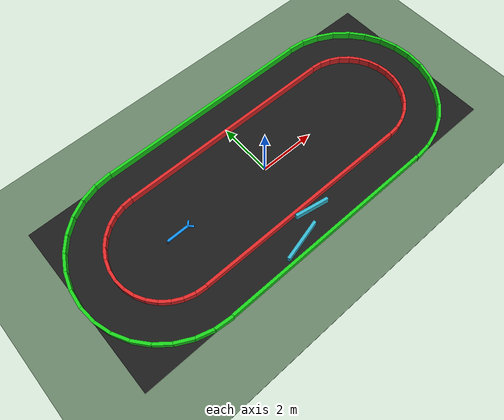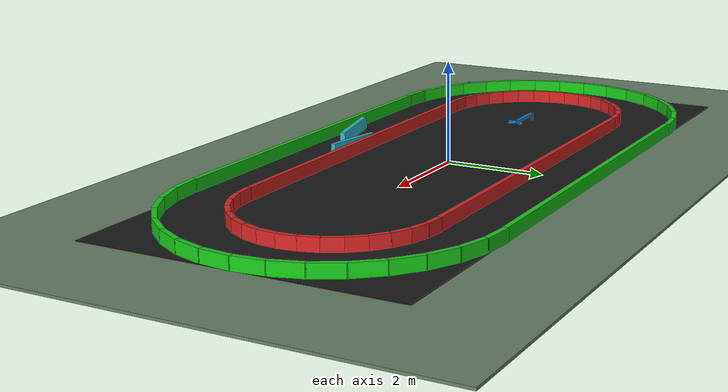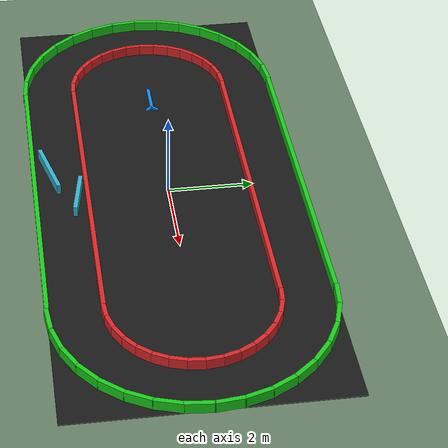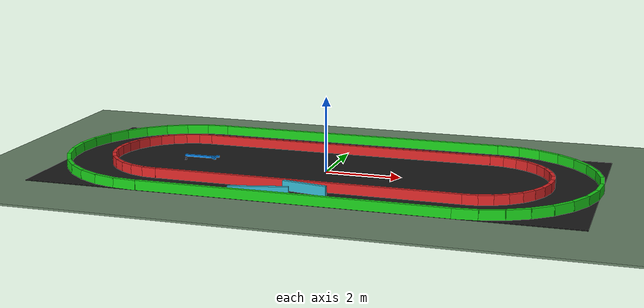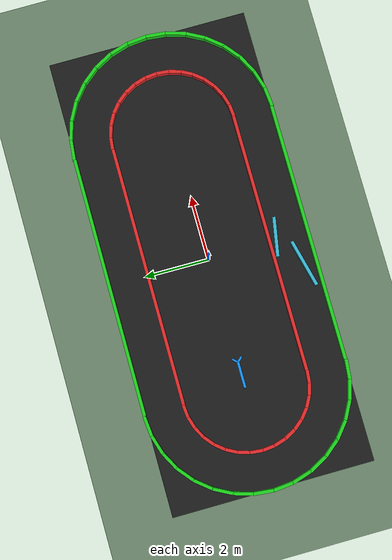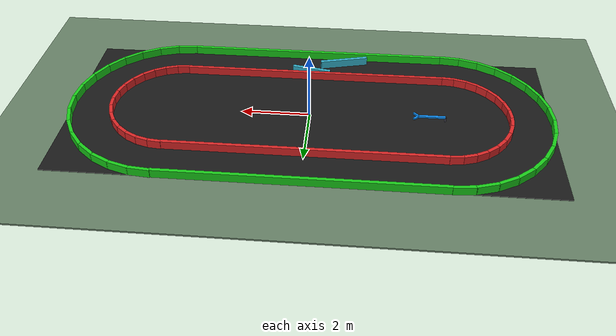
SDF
<?xml version="1.0" ?>
<sdf version="1.6">
  <world name="default">
    <plugin filename="gz-sim-physics-system"
            name="gz::sim::systems::Physics"/>

    <plugin filename="gz-sim-user-commands-system"
            name="gz::sim::systems::UserCommands"/>

    <plugin filename="gz-sim-scene-broadcaster-system"
            name="gz::sim::systems::SceneBroadcaster"/>

    <light type="directional" name="sun">
      <pose>0 0 10 0 0 0</pose>
      <diffuse>0.8 0.8 0.8 1</diffuse>
      <specular>0.2 0.2 0.2 1</specular>
      <attenuation>
        <range>200</range>
        <constant>0.9</constant>
        <linear>0.01</linear>
        <quadratic>0.001</quadratic>
      </attenuation>
      <direction>-0.5 0.5 -1</direction>
      <cast_shadows>true</cast_shadows>
    </light>

    <model name="ground_plane_local">
      <static>true</static>
      <pose>0 0 -0.025 0 0 0</pose>
      <link name="ground_link">
        <collision name="ground_collision">
          <geometry>
            <box>
              <size>60 60 0.05</size>
            </box>
          </geometry>
          <surface>
            <friction>
              <ode>
                <mu>1.2</mu>
                <mu2>1.2</mu2>
                <slip1>0.0</slip1>
                <slip2>0.0</slip2>
              </ode>
            </friction>
            <contact>
              <ode>
                <kp>100000.0</kp>
                <kd>10.0</kd>
              </ode>
            </contact>
          </surface>
        </collision>
        <visual name="ground_visual">
          <geometry>
            <box>
              <size>60 60 0.05</size>
            </box>
          </geometry>
          <material>
            <ambient>0.35 0.45 0.35 1</ambient>
            <diffuse>0.4 0.5 0.4 1</diffuse>
          </material>
        </visual>
      </link>
    </model>

    <physics name="default_physics" type="ode">
      <real_time_factor>1.0</real_time_factor>
      <real_time_update_rate>1000.0</real_time_update_rate>
    </physics>

    <!-- Enable Gazebo Sim IMU and sensors -->
    <plugin filename="gz-sim-imu-system" name="gz::sim::systems::Imu"/>
    <plugin filename="gz-sim-sensors-system" name="gz::sim::systems::Sensors"/>
    <!-- Enable spawn/create service used by ros_gz_sim create -->
    <plugin filename="gz-sim-user-commands-system" name="gz::sim::systems::UserCommands"/>

    <!-- Oval track with protective walls -->
    <model name="oval_track">
      <static>true</static>
      <pose>0 0 0 0 0 0</pose>
      <link name="track_surface">
        <collision name="track_collision">
          <geometry>
            <box>
              <size>14.200 6.200 0.02</size>
            </box>
          </geometry>
          <pose>0 0 0.010 0 0 0</pose>
          <surface>
            <friction>
              <ode>
                <mu>1.2</mu>
                <mu2>1.2</mu2>
                <slip1>0.0</slip1>
                <slip2>0.0</slip2>
              </ode>
            </friction>
            <contact>
              <ode>
                <kp>100000.0</kp>
                <kd>10.0</kd>
              </ode>
            </contact>
          </surface>
        </collision>
        <visual name="track_visual">
          <geometry>
            <box>
              <size>14.200 6.200 0.02</size>
            </box>
          </geometry>
          <pose>0 0 0.010 0 0 0</pose>
          <material>
            <ambient>0.08 0.08 0.08 1</ambient>
            <diffuse>0.1 0.1 0.1 1</diffuse>
            <specular>0.05 0.05 0.05 1</specular>
          </material>
        </visual>
      </link>
      <link name="track_walls">
      <collision name="outer_pos_collision">
        <geometry>
          <box>
            <size>8.000 0.100 0.250</size>
          </box>
        </geometry>
        <pose>0.000 3.100 0.145 0.000 0.000 0.000</pose>
      </collision>
      <visual name="outer_pos_visual">
        <geometry>
          <box>
            <size>8.000 0.100 0.250</size>
          </box>
        </geometry>
        <pose>0.000 3.100 0.145 0.000 0.000 0.000</pose>
        <material>
          <ambient>0.1 0.8 0.1 1</ambient>
          <diffuse>0.1 0.8 0.1 1</diffuse>
        </material>
      </visual>
      <collision name="outer_neg_collision">
        <geometry>
          <box>
            <size>8.000 0.100 0.250</size>
          </box>
        </geometry>
        <pose>0.000 -3.100 0.145 0.000 0.000 0.000</pose>
      </collision>
      <visual name="outer_neg_visual">
        <geometry>
          <box>
            <size>8.000 0.100 0.250</size>
          </box>
        </geometry>
        <pose>0.000 -3.100 0.145 0.000 0.000 0.000</pose>
        <material>
          <ambient>0.1 0.8 0.1 1</ambient>
          <diffuse>0.1 0.8 0.1 1</diffuse>
        </material>
      </visual>
      <collision name="inner_pos_collision">
        <geometry>
          <box>
            <size>8.000 0.100 0.250</size>
          </box>
        </geometry>
        <pose>0.000 1.900 0.145 0.000 0.000 0.000</pose>
      </collision>
      <visual name="inner_pos_visual">
        <geometry>
          <box>
            <size>8.000 0.100 0.250</size>
          </box>
        </geometry>
        <pose>0.000 1.900 0.145 0.000 0.000 0.000</pose>
        <material>
          <ambient>0.85 0.15 0.15 1</ambient>
          <diffuse>0.85 0.15 0.15 1</diffuse>
        </material>
      </visual>
      <collision name="inner_neg_collision">
        <geometry>
          <box>
            <size>8.000 0.100 0.250</size>
          </box>
        </geometry>
        <pose>0.000 -1.900 0.145 0.000 0.000 0.000</pose>
      </collision>
      <visual name="inner_neg_visual">
        <geometry>
          <box>
            <size>8.000 0.100 0.250</size>
          </box>
        </geometry>
        <pose>0.000 -1.900 0.145 0.000 0.000 0.000</pose>
        <material>
          <ambient>0.85 0.15 0.15 1</ambient>
          <diffuse>0.85 0.15 0.15 1</diffuse>
        </material>
      </visual>
      <collision name="outer_r_right_0_collision">
        <geometry>
          <box>
            <size>0.639 0.100 0.250</size>
          </box>
        </geometry>
        <pose>4.304 -3.085 0.145 0.000 0.000 0.098</pose>
      </collision>
      <visual name="outer_r_right_0_visual">
        <geometry>
          <box>
            <size>0.639 0.100 0.250</size>
          </box>
        </geometry>
        <pose>4.304 -3.085 0.145 0.000 0.000 0.098</pose>
        <material>
          <ambient>0.1 0.8 0.1 1</ambient>
          <diffuse>0.1 0.8 0.1 1</diffuse>
        </material>
      </visual>
      <collision name="inner_r_right_0_collision">
        <geometry>
          <box>
            <size>0.392 0.100 0.250</size>
          </box>
        </geometry>
        <pose>4.186 -1.891 0.145 0.000 0.000 0.098</pose>
      </collision>
      <visual name="inner_r_right_0_visual">
        <geometry>
          <box>
            <size>0.392 0.100 0.250</size>
          </box>
        </geometry>
        <pose>4.186 -1.891 0.145 0.000 0.000 0.098</pose>
        <material>
          <ambient>0.85 0.15 0.15 1</ambient>
          <diffuse>0.85 0.15 0.15 1</diffuse>
        </material>
      </visual>
      <collision name="outer_r_right_1_collision">
        <geometry>
          <box>
            <size>0.639 0.100 0.250</size>
          </box>
        </geometry>
        <pose>4.900 -2.967 0.145 0.000 0.000 0.295</pose>
      </collision>
      <visual name="outer_r_right_1_visual">
        <geometry>
          <box>
            <size>0.639 0.100 0.250</size>
          </box>
        </geometry>
        <pose>4.900 -2.967 0.145 0.000 0.000 0.295</pose>
        <material>
          <ambient>0.1 0.8 0.1 1</ambient>
          <diffuse>0.1 0.8 0.1 1</diffuse>
        </material>
      </visual>
      <collision name="inner_r_right_1_collision">
        <geometry>
          <box>
            <size>0.392 0.100 0.250</size>
          </box>
        </geometry>
        <pose>4.552 -1.818 0.145 0.000 0.000 0.295</pose>
      </collision>
      <visual name="inner_r_right_1_visual">
        <geometry>
          <box>
            <size>0.392 0.100 0.250</size>
          </box>
        </geometry>
        <pose>4.552 -1.818 0.145 0.000 0.000 0.295</pose>
        <material>
          <ambient>0.85 0.15 0.15 1</ambient>
          <diffuse>0.85 0.15 0.15 1</diffuse>
        </material>
      </visual>
      <collision name="outer_r_right_2_collision">
        <geometry>
          <box>
            <size>0.639 0.100 0.250</size>
          </box>
        </geometry>
        <pose>5.461 -2.734 0.145 0.000 0.000 0.491</pose>
      </collision>
      <visual name="outer_r_right_2_visual">
        <geometry>
          <box>
            <size>0.639 0.100 0.250</size>
          </box>
        </geometry>
        <pose>5.461 -2.734 0.145 0.000 0.000 0.491</pose>
        <material>
          <ambient>0.1 0.8 0.1 1</ambient>
          <diffuse>0.1 0.8 0.1 1</diffuse>
        </material>
      </visual>
      <collision name="inner_r_right_2_collision">
        <geometry>
          <box>
            <size>0.392 0.100 0.250</size>
          </box>
        </geometry>
        <pose>4.896 -1.676 0.145 0.000 0.000 0.491</pose>
      </collision>
      <visual name="inner_r_right_2_visual">
        <geometry>
          <box>
            <size>0.392 0.100 0.250</size>
          </box>
        </geometry>
        <pose>4.896 -1.676 0.145 0.000 0.000 0.491</pose>
        <material>
          <ambient>0.85 0.15 0.15 1</ambient>
          <diffuse>0.85 0.15 0.15 1</diffuse>
        </material>
      </visual>
      <collision name="outer_r_right_3_collision">
        <geometry>
          <box>
            <size>0.639 0.100 0.250</size>
          </box>
        </geometry>
        <pose>5.967 -2.396 0.145 0.000 0.000 0.687</pose>
      </collision>
      <visual name="outer_r_right_3_visual">
        <geometry>
          <box>
            <size>0.639 0.100 0.250</size>
          </box>
        </geometry>
        <pose>5.967 -2.396 0.145 0.000 0.000 0.687</pose>
        <material>
          <ambient>0.1 0.8 0.1 1</ambient>
          <diffuse>0.1 0.8 0.1 1</diffuse>
        </material>
      </visual>
      <collision name="inner_r_right_3_collision">
        <geometry>
          <box>
            <size>0.392 0.100 0.250</size>
          </box>
        </geometry>
        <pose>5.205 -1.469 0.145 0.000 0.000 0.687</pose>
      </collision>
      <visual name="inner_r_right_3_visual">
        <geometry>
          <box>
            <size>0.392 0.100 0.250</size>
          </box>
        </geometry>
        <pose>5.205 -1.469 0.145 0.000 0.000 0.687</pose>
        <material>
          <ambient>0.85 0.15 0.15 1</ambient>
          <diffuse>0.85 0.15 0.15 1</diffuse>
        </material>
      </visual>
      <collision name="outer_r_right_4_collision">
        <geometry>
          <box>
            <size>0.639 0.100 0.250</size>
          </box>
        </geometry>
        <pose>6.396 -1.967 0.145 0.000 0.000 0.884</pose>
      </collision>
      <visual name="outer_r_right_4_visual">
        <geometry>
          <box>
            <size>0.639 0.100 0.250</size>
          </box>
        </geometry>
        <pose>6.396 -1.967 0.145 0.000 0.000 0.884</pose>
        <material>
          <ambient>0.1 0.8 0.1 1</ambient>
          <diffuse>0.1 0.8 0.1 1</diffuse>
        </material>
      </visual>
      <collision name="inner_r_right_4_collision">
        <geometry>
          <box>
            <size>0.392 0.100 0.250</size>
          </box>
        </geometry>
        <pose>5.469 -1.205 0.145 0.000 0.000 0.884</pose>
      </collision>
      <visual name="inner_r_right_4_visual">
        <geometry>
          <box>
            <size>0.392 0.100 0.250</size>
          </box>
        </geometry>
        <pose>5.469 -1.205 0.145 0.000 0.000 0.884</pose>
        <material>
          <ambient>0.85 0.15 0.15 1</ambient>
          <diffuse>0.85 0.15 0.15 1</diffuse>
        </material>
      </visual>
      <collision name="outer_r_right_5_collision">
        <geometry>
          <box>
            <size>0.639 0.100 0.250</size>
          </box>
        </geometry>
        <pose>6.734 -1.461 0.145 0.000 0.000 1.080</pose>
      </collision>
      <visual name="outer_r_right_5_visual">
        <geometry>
          <box>
            <size>0.639 0.100 0.250</size>
          </box>
        </geometry>
        <pose>6.734 -1.461 0.145 0.000 0.000 1.080</pose>
        <material>
          <ambient>0.1 0.8 0.1 1</ambient>
          <diffuse>0.1 0.8 0.1 1</diffuse>
        </material>
      </visual>
      <collision name="inner_r_right_5_collision">
        <geometry>
          <box>
            <size>0.392 0.100 0.250</size>
          </box>
        </geometry>
        <pose>5.676 -0.896 0.145 0.000 0.000 1.080</pose>
      </collision>
      <visual name="inner_r_right_5_visual">
        <geometry>
          <box>
            <size>0.392 0.100 0.250</size>
          </box>
        </geometry>
        <pose>5.676 -0.896 0.145 0.000 0.000 1.080</pose>
        <material>
          <ambient>0.85 0.15 0.15 1</ambient>
          <diffuse>0.85 0.15 0.15 1</diffuse>
        </material>
      </visual>
      <collision name="outer_r_right_6_collision">
        <geometry>
          <box>
            <size>0.639 0.100 0.250</size>
          </box>
        </geometry>
        <pose>6.967 -0.900 0.145 0.000 0.000 1.276</pose>
      </collision>
      <visual name="outer_r_right_6_visual">
        <geometry>
          <box>
            <size>0.639 0.100 0.250</size>
          </box>
        </geometry>
        <pose>6.967 -0.900 0.145 0.000 0.000 1.276</pose>
        <material>
          <ambient>0.1 0.8 0.1 1</ambient>
          <diffuse>0.1 0.8 0.1 1</diffuse>
        </material>
      </visual>
      <collision name="inner_r_right_6_collision">
        <geometry>
          <box>
            <size>0.392 0.100 0.250</size>
          </box>
        </geometry>
        <pose>5.818 -0.552 0.145 0.000 0.000 1.276</pose>
      </collision>
      <visual name="inner_r_right_6_visual">
        <geometry>
          <box>
            <size>0.392 0.100 0.250</size>
          </box>
        </geometry>
        <pose>5.818 -0.552 0.145 0.000 0.000 1.276</pose>
        <material>
          <ambient>0.85 0.15 0.15 1</ambient>
          <diffuse>0.85 0.15 0.15 1</diffuse>
        </material>
      </visual>
      <collision name="outer_r_right_7_collision">
        <geometry>
          <box>
            <size>0.639 0.100 0.250</size>
          </box>
        </geometry>
        <pose>7.085 -0.304 0.145 0.000 0.000 1.473</pose>
      </collision>
      <visual name="outer_r_right_7_visual">
        <geometry>
          <box>
            <size>0.639 0.100 0.250</size>
          </box>
        </geometry>
        <pose>7.085 -0.304 0.145 0.000 0.000 1.473</pose>
        <material>
          <ambient>0.1 0.8 0.1 1</ambient>
          <diffuse>0.1 0.8 0.1 1</diffuse>
        </material>
      </visual>
      <collision name="inner_r_right_7_collision">
        <geometry>
          <box>
            <size>0.392 0.100 0.250</size>
          </box>
        </geometry>
        <pose>5.891 -0.186 0.145 0.000 0.000 1.473</pose>
      </collision>
      <visual name="inner_r_right_7_visual">
        <geometry>
          <box>
            <size>0.392 0.100 0.250</size>
          </box>
        </geometry>
        <pose>5.891 -0.186 0.145 0.000 0.000 1.473</pose>
        <material>
          <ambient>0.85 0.15 0.15 1</ambient>
          <diffuse>0.85 0.15 0.15 1</diffuse>
        </material>
      </visual>
      <collision name="outer_r_right_8_collision">
        <geometry>
          <box>
            <size>0.639 0.100 0.250</size>
          </box>
        </geometry>
        <pose>7.085 0.304 0.145 0.000 0.000 1.669</pose>
      </collision>
      <visual name="outer_r_right_8_visual">
        <geometry>
          <box>
            <size>0.639 0.100 0.250</size>
          </box>
        </geometry>
        <pose>7.085 0.304 0.145 0.000 0.000 1.669</pose>
        <material>
          <ambient>0.1 0.8 0.1 1</ambient>
          <diffuse>0.1 0.8 0.1 1</diffuse>
        </material>
      </visual>
      <collision name="inner_r_right_8_collision">
        <geometry>
          <box>
            <size>0.392 0.100 0.250</size>
          </box>
        </geometry>
        <pose>5.891 0.186 0.145 0.000 0.000 1.669</pose>
      </collision>
      <visual name="inner_r_right_8_visual">
        <geometry>
          <box>
            <size>0.392 0.100 0.250</size>
          </box>
        </geometry>
        <pose>5.891 0.186 0.145 0.000 0.000 1.669</pose>
        <material>
          <ambient>0.85 0.15 0.15 1</ambient>
          <diffuse>0.85 0.15 0.15 1</diffuse>
        </material>
      </visual>
      <collision name="outer_r_right_9_collision">
        <geometry>
          <box>
            <size>0.639 0.100 0.250</size>
          </box>
        </geometry>
        <pose>6.967 0.900 0.145 0.000 0.000 1.865</pose>
      </collision>
      <visual name="outer_r_right_9_visual">
        <geometry>
          <box>
            <size>0.639 0.100 0.250</size>
          </box>
        </geometry>
        <pose>6.967 0.900 0.145 0.000 0.000 1.865</pose>
        <material>
          <ambient>0.1 0.8 0.1 1</ambient>
          <diffuse>0.1 0.8 0.1 1</diffuse>
        </material>
      </visual>
      <collision name="inner_r_right_9_collision">
        <geometry>
          <box>
            <size>0.392 0.100 0.250</size>
          </box>
        </geometry>
        <pose>5.818 0.552 0.145 0.000 0.000 1.865</pose>
      </collision>
      <visual name="inner_r_right_9_visual">
        <geometry>
          <box>
            <size>0.392 0.100 0.250</size>
          </box>
        </geometry>
        <pose>5.818 0.552 0.145 0.000 0.000 1.865</pose>
        <material>
          <ambient>0.85 0.15 0.15 1</ambient>
          <diffuse>0.85 0.15 0.15 1</diffuse>
        </material>
      </visual>
      <collision name="outer_r_right_10_collision">
        <geometry>
          <box>
            <size>0.639 0.100 0.250</size>
          </box>
        </geometry>
        <pose>6.734 1.461 0.145 0.000 0.000 2.062</pose>
      </collision>
      <visual name="outer_r_right_10_visual">
        <geometry>
          <box>
            <size>0.639 0.100 0.250</size>
          </box>
        </geometry>
        <pose>6.734 1.461 0.145 0.000 0.000 2.062</pose>
        <material>
          <ambient>0.1 0.8 0.1 1</ambient>
          <diffuse>0.1 0.8 0.1 1</diffuse>
        </material>
      </visual>
      <collision name="inner_r_right_10_collision">
        <geometry>
          <box>
            <size>0.392 0.100 0.250</size>
          </box>
        </geometry>
        <pose>5.676 0.896 0.145 0.000 0.000 2.062</pose>
      </collision>
      <visual name="inner_r_right_10_visual">
        <geometry>
          <box>
            <size>0.392 0.100 0.250</size>
          </box>
        </geometry>
        <pose>5.676 0.896 0.145 0.000 0.000 2.062</pose>
        <material>
          <ambient>0.85 0.15 0.15 1</ambient>
          <diffuse>0.85 0.15 0.15 1</diffuse>
        </material>
      </visual>
      <collision name="outer_r_right_11_collision">
        <geometry>
          <box>
            <size>0.639 0.100 0.250</size>
          </box>
        </geometry>
        <pose>6.396 1.967 0.145 0.000 0.000 2.258</pose>
      </collision>
      <visual name="outer_r_right_11_visual">
        <geometry>
          <box>
            <size>0.639 0.100 0.250</size>
          </box>
        </geometry>
        <pose>6.396 1.967 0.145 0.000 0.000 2.258</pose>
        <material>
          <ambient>0.1 0.8 0.1 1</ambient>
          <diffuse>0.1 0.8 0.1 1</diffuse>
        </material>
      </visual>
      <collision name="inner_r_right_11_collision">
        <geometry>
          <box>
            <size>0.392 0.100 0.250</size>
          </box>
        </geometry>
        <pose>5.469 1.205 0.145 0.000 0.000 2.258</pose>
      </collision>
      <visual name="inner_r_right_11_visual">
        <geometry>
          <box>
            <size>0.392 0.100 0.250</size>
          </box>
        </geometry>
        <pose>5.469 1.205 0.145 0.000 0.000 2.258</pose>
        <material>
          <ambient>0.85 0.15 0.15 1</ambient>
          <diffuse>0.85 0.15 0.15 1</diffuse>
        </material>
      </visual>
      <collision name="outer_r_right_12_collision">
        <geometry>
          <box>
            <size>0.639 0.100 0.250</size>
          </box>
        </geometry>
        <pose>5.967 2.396 0.145 0.000 0.000 2.454</pose>
      </collision>
      <visual name="outer_r_right_12_visual">
        <geometry>
          <box>
            <size>0.639 0.100 0.250</size>
          </box>
        </geometry>
        <pose>5.967 2.396 0.145 0.000 0.000 2.454</pose>
        <material>
          <ambient>0.1 0.8 0.1 1</ambient>
          <diffuse>0.1 0.8 0.1 1</diffuse>
        </material>
      </visual>
      <collision name="inner_r_right_12_collision">
        <geometry>
          <box>
            <size>0.392 0.100 0.250</size>
          </box>
        </geometry>
        <pose>5.205 1.469 0.145 0.000 0.000 2.454</pose>
      </collision>
      <visual name="inner_r_right_12_visual">
        <geometry>
          <box>
            <size>0.392 0.100 0.250</size>
          </box>
        </geometry>
        <pose>5.205 1.469 0.145 0.000 0.000 2.454</pose>
        <material>
          <ambient>0.85 0.15 0.15 1</ambient>
          <diffuse>0.85 0.15 0.15 1</diffuse>
        </material>
      </visual>
      <collision name="outer_r_right_13_collision">
        <geometry>
          <box>
            <size>0.639 0.100 0.250</size>
          </box>
        </geometry>
        <pose>5.461 2.734 0.145 0.000 0.000 2.651</pose>
      </collision>
      <visual name="outer_r_right_13_visual">
        <geometry>
          <box>
            <size>0.639 0.100 0.250</size>
          </box>
        </geometry>
        <pose>5.461 2.734 0.145 0.000 0.000 2.651</pose>
        <material>
          <ambient>0.1 0.8 0.1 1</ambient>
          <diffuse>0.1 0.8 0.1 1</diffuse>
        </material>
      </visual>
      <collision name="inner_r_right_13_collision">
        <geometry>
          <box>
            <size>0.392 0.100 0.250</size>
          </box>
        </geometry>
        <pose>4.896 1.676 0.145 0.000 0.000 2.651</pose>
      </collision>
      <visual name="inner_r_right_13_visual">
        <geometry>
          <box>
            <size>0.392 0.100 0.250</size>
          </box>
        </geometry>
        <pose>4.896 1.676 0.145 0.000 0.000 2.651</pose>
        <material>
          <ambient>0.85 0.15 0.15 1</ambient>
          <diffuse>0.85 0.15 0.15 1</diffuse>
        </material>
      </visual>
      <collision name="outer_r_right_14_collision">
        <geometry>
          <box>
            <size>0.639 0.100 0.250</size>
          </box>
        </geometry>
        <pose>4.900 2.967 0.145 0.000 0.000 2.847</pose>
      </collision>
      <visual name="outer_r_right_14_visual">
        <geometry>
          <box>
            <size>0.639 0.100 0.250</size>
          </box>
        </geometry>
        <pose>4.900 2.967 0.145 0.000 0.000 2.847</pose>
        <material>
          <ambient>0.1 0.8 0.1 1</ambient>
          <diffuse>0.1 0.8 0.1 1</diffuse>
        </material>
      </visual>
      <collision name="inner_r_right_14_collision">
        <geometry>
          <box>
            <size>0.392 0.100 0.250</size>
          </box>
        </geometry>
        <pose>4.552 1.818 0.145 0.000 0.000 2.847</pose>
      </collision>
      <visual name="inner_r_right_14_visual">
        <geometry>
          <box>
            <size>0.392 0.100 0.250</size>
          </box>
        </geometry>
        <pose>4.552 1.818 0.145 0.000 0.000 2.847</pose>
        <material>
          <ambient>0.85 0.15 0.15 1</ambient>
          <diffuse>0.85 0.15 0.15 1</diffuse>
        </material>
      </visual>
      <collision name="outer_r_right_15_collision">
        <geometry>
          <box>
            <size>0.639 0.100 0.250</size>
          </box>
        </geometry>
        <pose>4.304 3.085 0.145 0.000 0.000 3.043</pose>
      </collision>
      <visual name="outer_r_right_15_visual">
        <geometry>
          <box>
            <size>0.639 0.100 0.250</size>
          </box>
        </geometry>
        <pose>4.304 3.085 0.145 0.000 0.000 3.043</pose>
        <material>
          <ambient>0.1 0.8 0.1 1</ambient>
          <diffuse>0.1 0.8 0.1 1</diffuse>
        </material>
      </visual>
      <collision name="inner_r_right_15_collision">
        <geometry>
          <box>
            <size>0.392 0.100 0.250</size>
          </box>
        </geometry>
        <pose>4.186 1.891 0.145 0.000 0.000 3.043</pose>
      </collision>
      <visual name="inner_r_right_15_visual">
        <geometry>
          <box>
            <size>0.392 0.100 0.250</size>
          </box>
        </geometry>
        <pose>4.186 1.891 0.145 0.000 0.000 3.043</pose>
        <material>
          <ambient>0.85 0.15 0.15 1</ambient>
          <diffuse>0.85 0.15 0.15 1</diffuse>
        </material>
      </visual>
      <collision name="outer_l_left_0_collision">
        <geometry>
          <box>
            <size>0.639 0.100 0.250</size>
          </box>
        </geometry>
        <pose>-4.304 3.085 0.145 0.000 0.000 3.240</pose>
      </collision>
      <visual name="outer_l_left_0_visual">
        <geometry>
          <box>
            <size>0.639 0.100 0.250</size>
          </box>
        </geometry>
        <pose>-4.304 3.085 0.145 0.000 0.000 3.240</pose>
        <material>
          <ambient>0.1 0.8 0.1 1</ambient>
          <diffuse>0.1 0.8 0.1 1</diffuse>
        </material>
      </visual>
      <collision name="inner_l_left_0_collision">
        <geometry>
          <box>
            <size>0.392 0.100 0.250</size>
          </box>
        </geometry>
        <pose>-4.186 1.891 0.145 0.000 0.000 3.240</pose>
      </collision>
      <visual name="inner_l_left_0_visual">
        <geometry>
          <box>
            <size>0.392 0.100 0.250</size>
          </box>
        </geometry>
        <pose>-4.186 1.891 0.145 0.000 0.000 3.240</pose>
        <material>
          <ambient>0.85 0.15 0.15 1</ambient>
          <diffuse>0.85 0.15 0.15 1</diffuse>
        </material>
      </visual>
      <collision name="outer_l_left_1_collision">
        <geometry>
          <box>
            <size>0.639 0.100 0.250</size>
          </box>
        </geometry>
        <pose>-4.900 2.967 0.145 0.000 0.000 3.436</pose>
      </collision>
      <visual name="outer_l_left_1_visual">
        <geometry>
          <box>
            <size>0.639 0.100 0.250</size>
          </box>
        </geometry>
        <pose>-4.900 2.967 0.145 0.000 0.000 3.436</pose>
        <material>
          <ambient>0.1 0.8 0.1 1</ambient>
          <diffuse>0.1 0.8 0.1 1</diffuse>
        </material>
      </visual>
      <collision name="inner_l_left_1_collision">
        <geometry>
          <box>
            <size>0.392 0.100 0.250</size>
          </box>
        </geometry>
        <pose>-4.552 1.818 0.145 0.000 0.000 3.436</pose>
      </collision>
      <visual name="inner_l_left_1_visual">
        <geometry>
          <box>
            <size>0.392 0.100 0.250</size>
          </box>
        </geometry>
        <pose>-4.552 1.818 0.145 0.000 0.000 3.436</pose>
        <material>
          <ambient>0.85 0.15 0.15 1</ambient>
          <diffuse>0.85 0.15 0.15 1</diffuse>
        </material>
      </visual>
      <collision name="outer_l_left_2_collision">
        <geometry>
          <box>
            <size>0.639 0.100 0.250</size>
          </box>
        </geometry>
        <pose>-5.461 2.734 0.145 0.000 0.000 3.632</pose>
      </collision>
      <visual name="outer_l_left_2_visual">
        <geometry>
          <box>
            <size>0.639 0.100 0.250</size>
          </box>
        </geometry>
        <pose>-5.461 2.734 0.145 0.000 0.000 3.632</pose>
        <material>
          <ambient>0.1 0.8 0.1 1</ambient>
          <diffuse>0.1 0.8 0.1 1</diffuse>
        </material>
      </visual>
      <collision name="inner_l_left_2_collision">
        <geometry>
          <box>
            <size>0.392 0.100 0.250</size>
          </box>
        </geometry>
        <pose>-4.896 1.676 0.145 0.000 0.000 3.632</pose>
      </collision>
      <visual name="inner_l_left_2_visual">
        <geometry>
          <box>
            <size>0.392 0.100 0.250</size>
          </box>
        </geometry>
        <pose>-4.896 1.676 0.145 0.000 0.000 3.632</pose>
        <material>
          <ambient>0.85 0.15 0.15 1</ambient>
          <diffuse>0.85 0.15 0.15 1</diffuse>
        </material>
      </visual>
      <collision name="outer_l_left_3_collision">
        <geometry>
          <box>
            <size>0.639 0.100 0.250</size>
          </box>
        </geometry>
        <pose>-5.967 2.396 0.145 0.000 0.000 3.829</pose>
      </collision>
      <visual name="outer_l_left_3_visual">
        <geometry>
          <box>
            <size>0.639 0.100 0.250</size>
          </box>
        </geometry>
        <pose>-5.967 2.396 0.145 0.000 0.000 3.829</pose>
        <material>
          <ambient>0.1 0.8 0.1 1</ambient>
          <diffuse>0.1 0.8 0.1 1</diffuse>
        </material>
      </visual>
      <collision name="inner_l_left_3_collision">
        <geometry>
          <box>
            <size>0.392 0.100 0.250</size>
          </box>
        </geometry>
        <pose>-5.205 1.469 0.145 0.000 0.000 3.829</pose>
      </collision>
      <visual name="inner_l_left_3_visual">
        <geometry>
          <box>
            <size>0.392 0.100 0.250</size>
          </box>
        </geometry>
        <pose>-5.205 1.469 0.145 0.000 0.000 3.829</pose>
        <material>
          <ambient>0.85 0.15 0.15 1</ambient>
          <diffuse>0.85 0.15 0.15 1</diffuse>
        </material>
      </visual>
      <collision name="outer_l_left_4_collision">
        <geometry>
          <box>
            <size>0.639 0.100 0.250</size>
          </box>
        </geometry>
        <pose>-6.396 1.967 0.145 0.000 0.000 4.025</pose>
      </collision>
      <visual name="outer_l_left_4_visual">
        <geometry>
          <box>
            <size>0.639 0.100 0.250</size>
          </box>
        </geometry>
        <pose>-6.396 1.967 0.145 0.000 0.000 4.025</pose>
        <material>
          <ambient>0.1 0.8 0.1 1</ambient>
          <diffuse>0.1 0.8 0.1 1</diffuse>
        </material>
      </visual>
      <collision name="inner_l_left_4_collision">
        <geometry>
          <box>
            <size>0.392 0.100 0.250</size>
          </box>
        </geometry>
        <pose>-5.469 1.205 0.145 0.000 0.000 4.025</pose>
      </collision>
      <visual name="inner_l_left_4_visual">
        <geometry>
          <box>
            <size>0.392 0.100 0.250</size>
          </box>
        </geometry>
        <pose>-5.469 1.205 0.145 0.000 0.000 4.025</pose>
        <material>
          <ambient>0.85 0.15 0.15 1</ambient>
          <diffuse>0.85 0.15 0.15 1</diffuse>
        </material>
      </visual>
      <collision name="outer_l_left_5_collision">
        <geometry>
          <box>
            <size>0.639 0.100 0.250</size>
          </box>
        </geometry>
        <pose>-6.734 1.461 0.145 0.000 0.000 4.222</pose>
      </collision>
      <visual name="outer_l_left_5_visual">
        <geometry>
          <box>
            <size>0.639 0.100 0.250</size>
          </box>
        </geometry>
        <pose>-6.734 1.461 0.145 0.000 0.000 4.222</pose>
        <material>
          <ambient>0.1 0.8 0.1 1</ambient>
          <diffuse>0.1 0.8 0.1 1</diffuse>
        </material>
      </visual>
      <collision name="inner_l_left_5_collision">
        <geometry>
          <box>
            <size>0.392 0.100 0.250</size>
          </box>
        </geometry>
        <pose>-5.676 0.896 0.145 0.000 0.000 4.222</pose>
      </collision>
      <visual name="inner_l_left_5_visual">
        <geometry>
          <box>
            <size>0.392 0.100 0.250</size>
          </box>
        </geometry>
        <pose>-5.676 0.896 0.145 0.000 0.000 4.222</pose>
        <material>
          <ambient>0.85 0.15 0.15 1</ambient>
          <diffuse>0.85 0.15 0.15 1</diffuse>
        </material>
      </visual>
      <collision name="outer_l_left_6_collision">
        <geometry>
          <box>
            <size>0.639 0.100 0.250</size>
          </box>
        </geometry>
        <pose>-6.967 0.900 0.145 0.000 0.000 4.418</pose>
      </collision>
      <visual name="outer_l_left_6_visual">
        <geometry>
          <box>
            <size>0.639 0.100 0.250</size>
          </box>
        </geometry>
        <pose>-6.967 0.900 0.145 0.000 0.000 4.418</pose>
        <material>
          <ambient>0.1 0.8 0.1 1</ambient>
          <diffuse>0.1 0.8 0.1 1</diffuse>
        </material>
      </visual>
      <collision name="inner_l_left_6_collision">
        <geometry>
          <box>
            <size>0.392 0.100 0.250</size>
          </box>
        </geometry>
        <pose>-5.818 0.552 0.145 0.000 0.000 4.418</pose>
      </collision>
      <visual name="inner_l_left_6_visual">
        <geometry>
          <box>
            <size>0.392 0.100 0.250</size>
          </box>
        </geometry>
        <pose>-5.818 0.552 0.145 0.000 0.000 4.418</pose>
        <material>
          <ambient>0.85 0.15 0.15 1</ambient>
          <diffuse>0.85 0.15 0.15 1</diffuse>
        </material>
      </visual>
      <collision name="outer_l_left_7_collision">
        <geometry>
          <box>
            <size>0.639 0.100 0.250</size>
          </box>
        </geometry>
        <pose>-7.085 0.304 0.145 0.000 0.000 4.614</pose>
      </collision>
      <visual name="outer_l_left_7_visual">
        <geometry>
          <box>
            <size>0.639 0.100 0.250</size>
          </box>
        </geometry>
        <pose>-7.085 0.304 0.145 0.000 0.000 4.614</pose>
        <material>
          <ambient>0.1 0.8 0.1 1</ambient>
          <diffuse>0.1 0.8 0.1 1</diffuse>
        </material>
      </visual>
      <collision name="inner_l_left_7_collision">
        <geometry>
          <box>
            <size>0.392 0.100 0.250</size>
          </box>
        </geometry>
        <pose>-5.891 0.186 0.145 0.000 0.000 4.614</pose>
      </collision>
      <visual name="inner_l_left_7_visual">
        <geometry>
          <box>
            <size>0.392 0.100 0.250</size>
          </box>
        </geometry>
        <pose>-5.891 0.186 0.145 0.000 0.000 4.614</pose>
        <material>
          <ambient>0.85 0.15 0.15 1</ambient>
          <diffuse>0.85 0.15 0.15 1</diffuse>
        </material>
      </visual>
      <collision name="outer_l_left_8_collision">
        <geometry>
          <box>
            <size>0.639 0.100 0.250</size>
          </box>
        </geometry>
        <pose>-7.085 -0.304 0.145 0.000 0.000 4.811</pose>
      </collision>
      <visual name="outer_l_left_8_visual">
        <geometry>
          <box>
            <size>0.639 0.100 0.250</size>
          </box>
        </geometry>
        <pose>-7.085 -0.304 0.145 0.000 0.000 4.811</pose>
        <material>
          <ambient>0.1 0.8 0.1 1</ambient>
          <diffuse>0.1 0.8 0.1 1</diffuse>
        </material>
      </visual>
      <collision name="inner_l_left_8_collision">
        <geometry>
          <box>
            <size>0.392 0.100 0.250</size>
          </box>
        </geometry>
        <pose>-5.891 -0.186 0.145 0.000 0.000 4.811</pose>
      </collision>
      <visual name="inner_l_left_8_visual">
        <geometry>
          <box>
            <size>0.392 0.100 0.250</size>
          </box>
        </geometry>
        <pose>-5.891 -0.186 0.145 0.000 0.000 4.811</pose>
        <material>
          <ambient>0.85 0.15 0.15 1</ambient>
          <diffuse>0.85 0.15 0.15 1</diffuse>
        </material>
      </visual>
      <collision name="outer_l_left_9_collision">
        <geometry>
          <box>
            <size>0.639 0.100 0.250</size>
          </box>
        </geometry>
        <pose>-6.967 -0.900 0.145 0.000 0.000 5.007</pose>
      </collision>
      <visual name="outer_l_left_9_visual">
        <geometry>
          <box>
            <size>0.639 0.100 0.250</size>
          </box>
        </geometry>
        <pose>-6.967 -0.900 0.145 0.000 0.000 5.007</pose>
        <material>
          <ambient>0.1 0.8 0.1 1</ambient>
          <diffuse>0.1 0.8 0.1 1</diffuse>
        </material>
      </visual>
      <collision name="inner_l_left_9_collision">
        <geometry>
          <box>
            <size>0.392 0.100 0.250</size>
          </box>
        </geometry>
        <pose>-5.818 -0.552 0.145 0.000 0.000 5.007</pose>
      </collision>
      <visual name="inner_l_left_9_visual">
        <geometry>
          <box>
            <size>0.392 0.100 0.250</size>
          </box>
        </geometry>
        <pose>-5.818 -0.552 0.145 0.000 0.000 5.007</pose>
        <material>
          <ambient>0.85 0.15 0.15 1</ambient>
          <diffuse>0.85 0.15 0.15 1</diffuse>
        </material>
      </visual>
      <collision name="outer_l_left_10_collision">
        <geometry>
          <box>
            <size>0.639 0.100 0.250</size>
          </box>
        </geometry>
        <pose>-6.734 -1.461 0.145 0.000 0.000 5.203</pose>
      </collision>
      <visual name="outer_l_left_10_visual">
        <geometry>
          <box>
            <size>0.639 0.100 0.250</size>
          </box>
        </geometry>
        <pose>-6.734 -1.461 0.145 0.000 0.000 5.203</pose>
        <material>
          <ambient>0.1 0.8 0.1 1</ambient>
          <diffuse>0.1 0.8 0.1 1</diffuse>
        </material>
      </visual>
      <collision name="inner_l_left_10_collision">
        <geometry>
          <box>
            <size>0.392 0.100 0.250</size>
          </box>
        </geometry>
        <pose>-5.676 -0.896 0.145 0.000 0.000 5.203</pose>
      </collision>
      <visual name="inner_l_left_10_visual">
        <geometry>
          <box>
            <size>0.392 0.100 0.250</size>
          </box>
        </geometry>
        <pose>-5.676 -0.896 0.145 0.000 0.000 5.203</pose>
        <material>
          <ambient>0.85 0.15 0.15 1</ambient>
          <diffuse>0.85 0.15 0.15 1</diffuse>
        </material>
      </visual>
      <collision name="outer_l_left_11_collision">
        <geometry>
          <box>
            <size>0.639 0.100 0.250</size>
          </box>
        </geometry>
        <pose>-6.396 -1.967 0.145 0.000 0.000 5.400</pose>
      </collision>
      <visual name="outer_l_left_11_visual">
        <geometry>
          <box>
            <size>0.639 0.100 0.250</size>
          </box>
        </geometry>
        <pose>-6.396 -1.967 0.145 0.000 0.000 5.400</pose>
        <material>
          <ambient>0.1 0.8 0.1 1</ambient>
          <diffuse>0.1 0.8 0.1 1</diffuse>
        </material>
      </visual>
      <collision name="inner_l_left_11_collision">
        <geometry>
          <box>
            <size>0.392 0.100 0.250</size>
          </box>
        </geometry>
        <pose>-5.469 -1.205 0.145 0.000 0.000 5.400</pose>
      </collision>
      <visual name="inner_l_left_11_visual">
        <geometry>
          <box>
            <size>0.392 0.100 0.250</size>
          </box>
        </geometry>
        <pose>-5.469 -1.205 0.145 0.000 0.000 5.400</pose>
        <material>
          <ambient>0.85 0.15 0.15 1</ambient>
          <diffuse>0.85 0.15 0.15 1</diffuse>
        </material>
      </visual>
      <collision name="outer_l_left_12_collision">
        <geometry>
          <box>
            <size>0.639 0.100 0.250</size>
          </box>
        </geometry>
        <pose>-5.967 -2.396 0.145 0.000 0.000 5.596</pose>
      </collision>
      <visual name="outer_l_left_12_visual">
        <geometry>
          <box>
            <size>0.639 0.100 0.250</size>
          </box>
        </geometry>
        <pose>-5.967 -2.396 0.145 0.000 0.000 5.596</pose>
        <material>
          <ambient>0.1 0.8 0.1 1</ambient>
          <diffuse>0.1 0.8 0.1 1</diffuse>
        </material>
      </visual>
      <collision name="inner_l_left_12_collision">
        <geometry>
          <box>
            <size>0.392 0.100 0.250</size>
          </box>
        </geometry>
        <pose>-5.205 -1.469 0.145 0.000 0.000 5.596</pose>
      </collision>
      <visual name="inner_l_left_12_visual">
        <geometry>
          <box>
            <size>0.392 0.100 0.250</size>
          </box>
        </geometry>
        <pose>-5.205 -1.469 0.145 0.000 0.000 5.596</pose>
        <material>
          <ambient>0.85 0.15 0.15 1</ambient>
          <diffuse>0.85 0.15 0.15 1</diffuse>
        </material>
      </visual>
      <collision name="outer_l_left_13_collision">
        <geometry>
          <box>
            <size>0.639 0.100 0.250</size>
          </box>
        </geometry>
        <pose>-5.461 -2.734 0.145 0.000 0.000 5.792</pose>
      </collision>
      <visual name="outer_l_left_13_visual">
        <geometry>
          <box>
            <size>0.639 0.100 0.250</size>
          </box>
        </geometry>
        <pose>-5.461 -2.734 0.145 0.000 0.000 5.792</pose>
        <material>
          <ambient>0.1 0.8 0.1 1</ambient>
          <diffuse>0.1 0.8 0.1 1</diffuse>
        </material>
      </visual>
      <collision name="inner_l_left_13_collision">
        <geometry>
          <box>
            <size>0.392 0.100 0.250</size>
          </box>
        </geometry>
        <pose>-4.896 -1.676 0.145 0.000 0.000 5.792</pose>
      </collision>
      <visual name="inner_l_left_13_visual">
        <geometry>
          <box>
            <size>0.392 0.100 0.250</size>
          </box>
        </geometry>
        <pose>-4.896 -1.676 0.145 0.000 0.000 5.792</pose>
        <material>
          <ambient>0.85 0.15 0.15 1</ambient>
          <diffuse>0.85 0.15 0.15 1</diffuse>
        </material>
      </visual>
      <collision name="outer_l_left_14_collision">
        <geometry>
          <box>
            <size>0.639 0.100 0.250</size>
          </box>
        </geometry>
        <pose>-4.900 -2.967 0.145 0.000 0.000 5.989</pose>
      </collision>
      <visual name="outer_l_left_14_visual">
        <geometry>
          <box>
            <size>0.639 0.100 0.250</size>
          </box>
        </geometry>
        <pose>-4.900 -2.967 0.145 0.000 0.000 5.989</pose>
        <material>
          <ambient>0.1 0.8 0.1 1</ambient>
          <diffuse>0.1 0.8 0.1 1</diffuse>
        </material>
      </visual>
      <collision name="inner_l_left_14_collision">
        <geometry>
          <box>
            <size>0.392 0.100 0.250</size>
          </box>
        </geometry>
        <pose>-4.552 -1.818 0.145 0.000 0.000 5.989</pose>
      </collision>
      <visual name="inner_l_left_14_visual">
        <geometry>
          <box>
            <size>0.392 0.100 0.250</size>
          </box>
        </geometry>
        <pose>-4.552 -1.818 0.145 0.000 0.000 5.989</pose>
        <material>
          <ambient>0.85 0.15 0.15 1</ambient>
          <diffuse>0.85 0.15 0.15 1</diffuse>
        </material>
      </visual>
      <collision name="outer_l_left_15_collision">
        <geometry>
          <box>
            <size>0.639 0.100 0.250</size>
          </box>
        </geometry>
        <pose>-4.304 -3.085 0.145 0.000 0.000 6.185</pose>
      </collision>
      <visual name="outer_l_left_15_visual">
        <geometry>
          <box>
            <size>0.639 0.100 0.250</size>
          </box>
        </geometry>
        <pose>-4.304 -3.085 0.145 0.000 0.000 6.185</pose>
        <material>
          <ambient>0.1 0.8 0.1 1</ambient>
          <diffuse>0.1 0.8 0.1 1</diffuse>
        </material>
      </visual>
      <collision name="inner_l_left_15_collision">
        <geometry>
          <box>
            <size>0.392 0.100 0.250</size>
          </box>
        </geometry>
        <pose>-4.186 -1.891 0.145 0.000 0.000 6.185</pose>
      </collision>
      <visual name="inner_l_left_15_visual">
        <geometry>
          <box>
            <size>0.392 0.100 0.250</size>
          </box>
        </geometry>
        <pose>-4.186 -1.891 0.145 0.000 0.000 6.185</pose>
        <material>
          <ambient>0.85 0.15 0.15 1</ambient>
          <diffuse>0.85 0.15 0.15 1</diffuse>
        </material>
      </visual>
      </link>
      <link name="center_line">
      <visual name="line_top_visual">
        <geometry>
          <box>
            <size>8.000 0.050 0.005</size>
          </box>
        </geometry>
        <pose>0.000 2.500 0.014 0.000 0.000 0.000</pose>
        <material>
          <ambient>0.9 0.9 0.1 1</ambient>
          <diffuse>0.9 0.9 0.1 1</diffuse>
        </material>
      </visual>
      <visual name="line_bottom_visual">
        <geometry>
          <box>
            <size>8.000 0.050 0.005</size>
          </box>
        </geometry>
        <pose>0.000 -2.500 0.014 0.000 0.000 0.000</pose>
        <material>
          <ambient>0.9 0.9 0.1 1</ambient>
          <diffuse>0.9 0.9 0.1 1</diffuse>
        </material>
      </visual>
      <visual name="line_right_0_visual">
        <geometry>
          <box>
            <size>0.515 0.050 0.005</size>
          </box>
        </geometry>
        <pose>4.245 -2.488 0.014 0.000 0.000 0.098</pose>
        <material>
          <ambient>0.9 0.9 0.1 1</ambient>
          <diffuse>0.9 0.9 0.1 1</diffuse>
        </material>
      </visual>
      <visual name="line_right_1_visual">
        <geometry>
          <box>
            <size>0.515 0.050 0.005</size>
          </box>
        </geometry>
        <pose>4.726 -2.392 0.014 0.000 0.000 0.295</pose>
        <material>
          <ambient>0.9 0.9 0.1 1</ambient>
          <diffuse>0.9 0.9 0.1 1</diffuse>
        </material>
      </visual>
      <visual name="line_right_2_visual">
        <geometry>
          <box>
            <size>0.515 0.050 0.005</size>
          </box>
        </geometry>
        <pose>5.178 -2.205 0.014 0.000 0.000 0.491</pose>
        <material>
          <ambient>0.9 0.9 0.1 1</ambient>
          <diffuse>0.9 0.9 0.1 1</diffuse>
        </material>
      </visual>
      <visual name="line_right_3_visual">
        <geometry>
          <box>
            <size>0.515 0.050 0.005</size>
          </box>
        </geometry>
        <pose>5.586 -1.933 0.014 0.000 0.000 0.687</pose>
        <material>
          <ambient>0.9 0.9 0.1 1</ambient>
          <diffuse>0.9 0.9 0.1 1</diffuse>
        </material>
      </visual>
      <visual name="line_right_4_visual">
        <geometry>
          <box>
            <size>0.515 0.050 0.005</size>
          </box>
        </geometry>
        <pose>5.933 -1.586 0.014 0.000 0.000 0.884</pose>
        <material>
          <ambient>0.9 0.9 0.1 1</ambient>
          <diffuse>0.9 0.9 0.1 1</diffuse>
        </material>
      </visual>
      <visual name="line_right_5_visual">
        <geometry>
          <box>
            <size>0.515 0.050 0.005</size>
          </box>
        </geometry>
        <pose>6.205 -1.178 0.014 0.000 0.000 1.080</pose>
        <material>
          <ambient>0.9 0.9 0.1 1</ambient>
          <diffuse>0.9 0.9 0.1 1</diffuse>
        </material>
      </visual>
      <visual name="line_right_6_visual">
        <geometry>
          <box>
            <size>0.515 0.050 0.005</size>
          </box>
        </geometry>
        <pose>6.392 -0.726 0.014 0.000 0.000 1.276</pose>
        <material>
          <ambient>0.9 0.9 0.1 1</ambient>
          <diffuse>0.9 0.9 0.1 1</diffuse>
        </material>
      </visual>
      <visual name="line_right_7_visual">
        <geometry>
          <box>
            <size>0.515 0.050 0.005</size>
          </box>
        </geometry>
        <pose>6.488 -0.245 0.014 0.000 0.000 1.473</pose>
        <material>
          <ambient>0.9 0.9 0.1 1</ambient>
          <diffuse>0.9 0.9 0.1 1</diffuse>
        </material>
      </visual>
      <visual name="line_right_8_visual">
        <geometry>
          <box>
            <size>0.515 0.050 0.005</size>
          </box>
        </geometry>
        <pose>6.488 0.245 0.014 0.000 0.000 1.669</pose>
        <material>
          <ambient>0.9 0.9 0.1 1</ambient>
          <diffuse>0.9 0.9 0.1 1</diffuse>
        </material>
      </visual>
      <visual name="line_right_9_visual">
        <geometry>
          <box>
            <size>0.515 0.050 0.005</size>
          </box>
        </geometry>
        <pose>6.392 0.726 0.014 0.000 0.000 1.865</pose>
        <material>
          <ambient>0.9 0.9 0.1 1</ambient>
          <diffuse>0.9 0.9 0.1 1</diffuse>
        </material>
      </visual>
      <visual name="line_right_10_visual">
        <geometry>
          <box>
            <size>0.515 0.050 0.005</size>
          </box>
        </geometry>
        <pose>6.205 1.178 0.014 0.000 0.000 2.062</pose>
        <material>
          <ambient>0.9 0.9 0.1 1</ambient>
          <diffuse>0.9 0.9 0.1 1</diffuse>
        </material>
      </visual>
      <visual name="line_right_11_visual">
        <geometry>
          <box>
            <size>0.515 0.050 0.005</size>
          </box>
        </geometry>
        <pose>5.933 1.586 0.014 0.000 0.000 2.258</pose>
        <material>
          <ambient>0.9 0.9 0.1 1</ambient>
          <diffuse>0.9 0.9 0.1 1</diffuse>
        </material>
      </visual>
      <visual name="line_right_12_visual">
        <geometry>
          <box>
            <size>0.515 0.050 0.005</size>
          </box>
        </geometry>
        <pose>5.586 1.933 0.014 0.000 0.000 2.454</pose>
        <material>
          <ambient>0.9 0.9 0.1 1</ambient>
          <diffuse>0.9 0.9 0.1 1</diffuse>
        </material>
      </visual>
      <visual name="line_right_13_visual">
        <geometry>
          <box>
            <size>0.515 0.050 0.005</size>
          </box>
        </geometry>
        <pose>5.178 2.205 0.014 0.000 0.000 2.651</pose>
        <material>
          <ambient>0.9 0.9 0.1 1</ambient>
          <diffuse>0.9 0.9 0.1 1</diffuse>
        </material>
      </visual>
      <visual name="line_right_14_visual">
        <geometry>
          <box>
            <size>0.515 0.050 0.005</size>
          </box>
        </geometry>
        <pose>4.726 2.392 0.014 0.000 0.000 2.847</pose>
        <material>
          <ambient>0.9 0.9 0.1 1</ambient>
          <diffuse>0.9 0.9 0.1 1</diffuse>
        </material>
      </visual>
      <visual name="line_right_15_visual">
        <geometry>
          <box>
            <size>0.515 0.050 0.005</size>
          </box>
        </geometry>
        <pose>4.245 2.488 0.014 0.000 0.000 3.043</pose>
        <material>
          <ambient>0.9 0.9 0.1 1</ambient>
          <diffuse>0.9 0.9 0.1 1</diffuse>
        </material>
      </visual>
      <visual name="line_left_0_visual">
        <geometry>
          <box>
            <size>0.515 0.050 0.005</size>
          </box>
        </geometry>
        <pose>-4.245 2.488 0.014 0.000 0.000 3.240</pose>
        <material>
          <ambient>0.9 0.9 0.1 1</ambient>
          <diffuse>0.9 0.9 0.1 1</diffuse>
        </material>
      </visual>
      <visual name="line_left_1_visual">
        <geometry>
          <box>
            <size>0.515 0.050 0.005</size>
          </box>
        </geometry>
        <pose>-4.726 2.392 0.014 0.000 0.000 3.436</pose>
        <material>
          <ambient>0.9 0.9 0.1 1</ambient>
          <diffuse>0.9 0.9 0.1 1</diffuse>
        </material>
      </visual>
      <visual name="line_left_2_visual">
        <geometry>
          <box>
            <size>0.515 0.050 0.005</size>
          </box>
        </geometry>
        <pose>-5.178 2.205 0.014 0.000 0.000 3.632</pose>
        <material>
          <ambient>0.9 0.9 0.1 1</ambient>
          <diffuse>0.9 0.9 0.1 1</diffuse>
        </material>
      </visual>
      <visual name="line_left_3_visual">
        <geometry>
          <box>
            <size>0.515 0.050 0.005</size>
          </box>
        </geometry>
        <pose>-5.586 1.933 0.014 0.000 0.000 3.829</pose>
        <material>
          <ambient>0.9 0.9 0.1 1</ambient>
          <diffuse>0.9 0.9 0.1 1</diffuse>
        </material>
      </visual>
      <visual name="line_left_4_visual">
        <geometry>
          <box>
            <size>0.515 0.050 0.005</size>
          </box>
        </geometry>
        <pose>-5.933 1.586 0.014 0.000 0.000 4.025</pose>
        <material>
          <ambient>0.9 0.9 0.1 1</ambient>
          <diffuse>0.9 0.9 0.1 1</diffuse>
        </material>
      </visual>
      <visual name="line_left_5_visual">
        <geometry>
          <box>
            <size>0.515 0.050 0.005</size>
          </box>
        </geometry>
        <pose>-6.205 1.178 0.014 0.000 0.000 4.222</pose>
        <material>
          <ambient>0.9 0.9 0.1 1</ambient>
          <diffuse>0.9 0.9 0.1 1</diffuse>
        </material>
      </visual>
      <visual name="line_left_6_visual">
        <geometry>
          <box>
            <size>0.515 0.050 0.005</size>
          </box>
        </geometry>
        <pose>-6.392 0.726 0.014 0.000 0.000 4.418</pose>
        <material>
          <ambient>0.9 0.9 0.1 1</ambient>
          <diffuse>0.9 0.9 0.1 1</diffuse>
        </material>
      </visual>
      <visual name="line_left_7_visual">
        <geometry>
          <box>
            <size>0.515 0.050 0.005</size>
          </box>
        </geometry>
        <pose>-6.488 0.245 0.014 0.000 0.000 4.614</pose>
        <material>
          <ambient>0.9 0.9 0.1 1</ambient>
          <diffuse>0.9 0.9 0.1 1</diffuse>
        </material>
      </visual>
      <visual name="line_left_8_visual">
        <geometry>
          <box>
            <size>0.515 0.050 0.005</size>
          </box>
        </geometry>
        <pose>-6.488 -0.245 0.014 0.000 0.000 4.811</pose>
        <material>
          <ambient>0.9 0.9 0.1 1</ambient>
          <diffuse>0.9 0.9 0.1 1</diffuse>
        </material>
      </visual>
      <visual name="line_left_9_visual">
        <geometry>
          <box>
            <size>0.515 0.050 0.005</size>
          </box>
        </geometry>
        <pose>-6.392 -0.726 0.014 0.000 0.000 5.007</pose>
        <material>
          <ambient>0.9 0.9 0.1 1</ambient>
          <diffuse>0.9 0.9 0.1 1</diffuse>
        </material>
      </visual>
      <visual name="line_left_10_visual">
        <geometry>
          <box>
            <size>0.515 0.050 0.005</size>
          </box>
        </geometry>
        <pose>-6.205 -1.178 0.014 0.000 0.000 5.203</pose>
        <material>
          <ambient>0.9 0.9 0.1 1</ambient>
          <diffuse>0.9 0.9 0.1 1</diffuse>
        </material>
      </visual>
      <visual name="line_left_11_visual">
        <geometry>
          <box>
            <size>0.515 0.050 0.005</size>
          </box>
        </geometry>
        <pose>-5.933 -1.586 0.014 0.000 0.000 5.400</pose>
        <material>
          <ambient>0.9 0.9 0.1 1</ambient>
          <diffuse>0.9 0.9 0.1 1</diffuse>
        </material>
      </visual>
      <visual name="line_left_12_visual">
        <geometry>
          <box>
            <size>0.515 0.050 0.005</size>
          </box>
        </geometry>
        <pose>-5.586 -1.933 0.014 0.000 0.000 5.596</pose>
        <material>
          <ambient>0.9 0.9 0.1 1</ambient>
          <diffuse>0.9 0.9 0.1 1</diffuse>
        </material>
      </visual>
      <visual name="line_left_13_visual">
        <geometry>
          <box>
            <size>0.515 0.050 0.005</size>
          </box>
        </geometry>
        <pose>-5.178 -2.205 0.014 0.000 0.000 5.792</pose>
        <material>
          <ambient>0.9 0.9 0.1 1</ambient>
          <diffuse>0.9 0.9 0.1 1</diffuse>
        </material>
      </visual>
      <visual name="line_left_14_visual">
        <geometry>
          <box>
            <size>0.515 0.050 0.005</size>
          </box>
        </geometry>
        <pose>-4.726 -2.392 0.014 0.000 0.000 5.989</pose>
        <material>
          <ambient>0.9 0.9 0.1 1</ambient>
          <diffuse>0.9 0.9 0.1 1</diffuse>
        </material>
      </visual>
      <visual name="line_left_15_visual">
        <geometry>
          <box>
            <size>0.515 0.050 0.005</size>
          </box>
        </geometry>
        <pose>-4.245 -2.488 0.014 0.000 0.000 6.185</pose>
        <material>
          <ambient>0.9 0.9 0.1 1</ambient>
          <diffuse>0.9 0.9 0.1 1</diffuse>
        </material>
      </visual>
      </link>
    </model>

    <!-- Arrow-shaped direction marker -->
    <model name="arrow_marker">
      <static>true</static>
      <pose>-4 0 0 0 0 0</pose>
      <link name="arrow">
        <!-- Base -->
        <collision name="stand_collision">
          <geometry>
            <cylinder>
              <radius>0.03</radius>
              <length>0.15</length>
            </cylinder>
          </geometry>
          <pose>0 0 0.075 0 0 0</pose>
        </collision>
        <visual name="stand_visual">
          <geometry>
            <cylinder>
              <radius>0.03</radius>
              <length>0.15</length>
            </cylinder>
          </geometry>
          <pose>0 0 0.075 0 0 0</pose>
          <material>
            <ambient>0.2 0.2 0.25 1</ambient>
            <diffuse>0.25 0.25 0.3 1</diffuse>
          </material>
        </visual>

        <!-- Arrow body -->
        <visual name="arrow_shaft">
          <geometry>
            <box>
              <size>0.8 0.08 0.05</size>
            </box>
          </geometry>
          <pose>0.4 0 0.15 0 0 0</pose>
          <material>
            <ambient>0 0.45 0.8 1</ambient>
            <diffuse>0.05 0.55 0.95 1</diffuse>
          </material>
        </visual>
        <!-- Arrow head built with two boxes -->
        <visual name="arrow_head_left">
          <geometry>
            <box>
              <size>0.2 0.06 0.05</size>
            </box>
          </geometry>
          <pose>0.85 0.07 0.15 0 0 0.785398</pose>
          <material>
            <ambient>0 0.45 0.8 1</ambient>
            <diffuse>0.05 0.55 0.95 1</diffuse>
          </material>
        </visual>
        <visual name="arrow_head_right">
          <geometry>
            <box>
              <size>0.2 0.06 0.05</size>
            </box>
          </geometry>
          <pose>0.85 -0.07 0.15 0 0 -0.785398</pose>
          <material>
            <ambient>0 0.45 0.8 1</ambient>
            <diffuse>0.05 0.55 0.95 1</diffuse>
          </material>
        </visual>
      </link>
    </model>

    <model name="scenario_narrowing_false_corridor">
      <static>true</static>
      <pose>0 0 0 0 0 0</pose>
      <link name="narrowing_link">
        <collision name="narrowing_outer_collision">
          <geometry>
            <box>
              <size>1.50 0.10 0.25</size>
            </box>
          </geometry>
          <pose>-0.90 -2.72 0.145 0 0 0.24</pose>
        </collision>
        <visual name="narrowing_outer_visual">
          <geometry>
            <box>
              <size>1.50 0.10 0.25</size>
            </box>
          </geometry>
          <pose>-0.90 -2.72 0.145 0 0 0.24</pose>
          <material>
            <ambient>0.2 0.7 0.8 1</ambient>
            <diffuse>0.2 0.7 0.8 1</diffuse>
          </material>
        </visual>
        <collision name="narrowing_inner_collision">
          <geometry>
            <box>
              <size>1.20 0.10 0.25</size>
            </box>
          </geometry>
          <pose>0.10 -2.12 0.145 0 0 -0.18</pose>
        </collision>
        <visual name="narrowing_inner_visual">
          <geometry>
            <box>
              <size>1.20 0.10 0.25</size>
            </box>
          </geometry>
          <pose>0.10 -2.12 0.145 0 0 -0.18</pose>
          <material>
            <ambient>0.2 0.7 0.8 1</ambient>
            <diffuse>0.2 0.7 0.8 1</diffuse>
          </material>
        </visual>
      </link>
    </model>

    <gui fullscreen="0">
      <camera name="user_camera">
        <pose>2.0 -4.0 2.0 0.0 0.5 1.57</pose>
        <view_controller>orbit</view_controller>
      </camera>
    </gui>
  </world>
</sdf>
